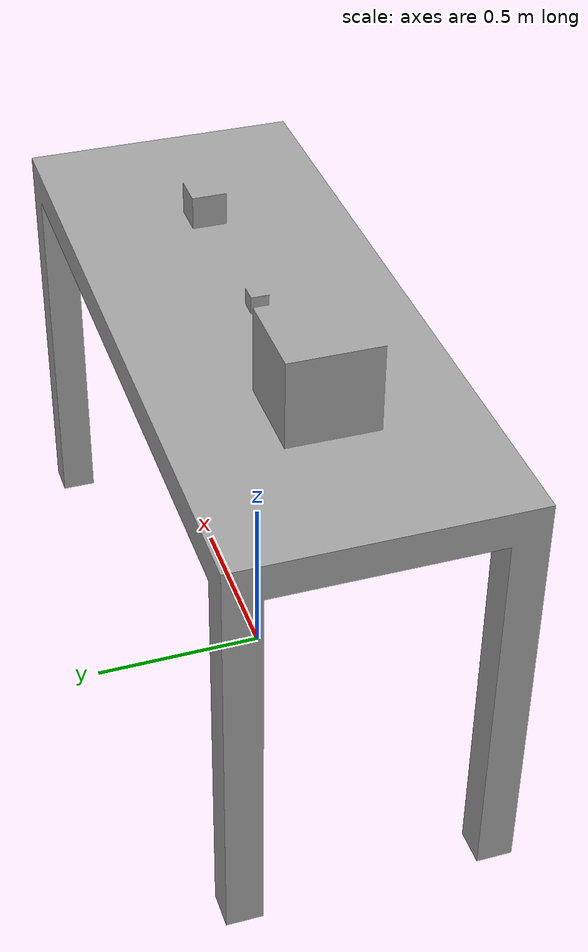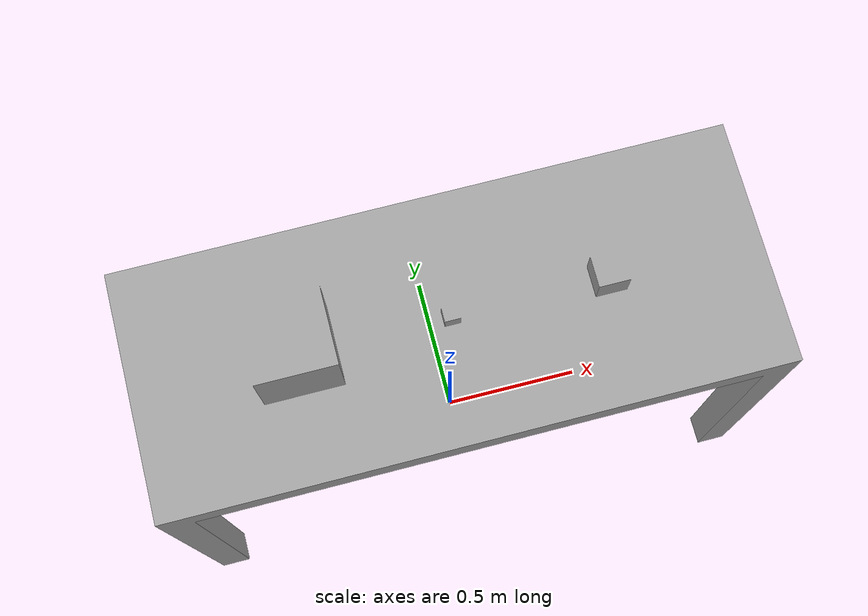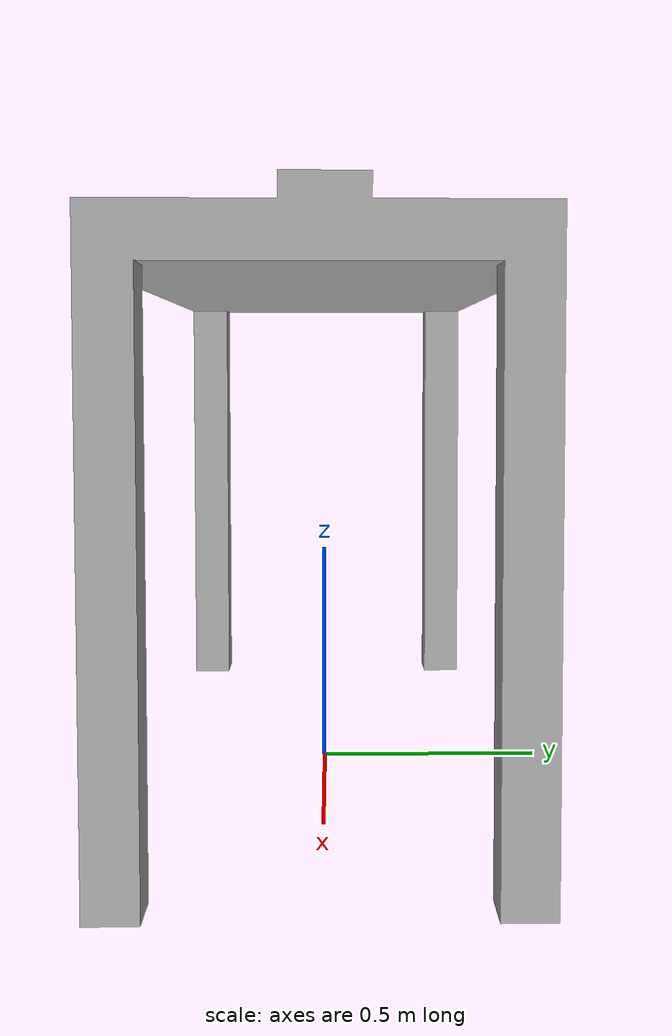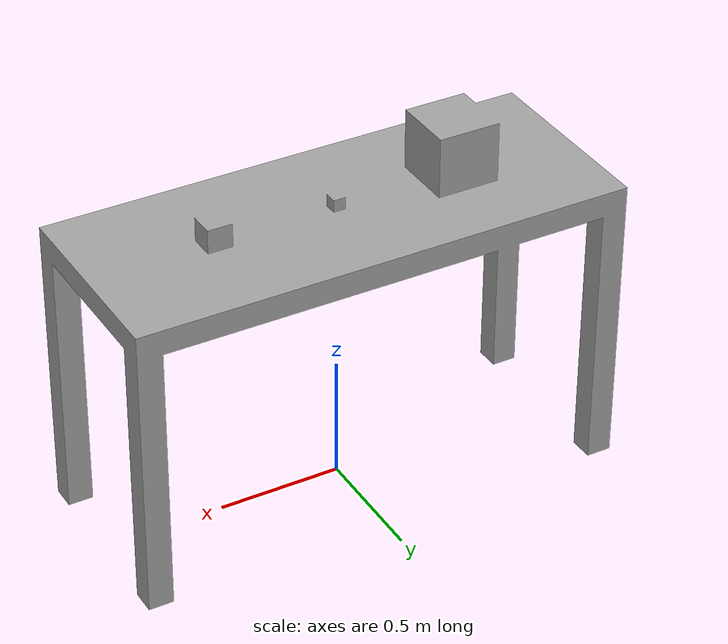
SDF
<?xml version="1.0"?>
<sdf version="1.5">
  <model name="my_table">
    <static>true</static>
    <link name="table_link">
      <collision name="table_collision">
        <geometry>
          <box>
            <size>1.5 1.5 1.5</size>
          </box>
        </geometry>
      </collision>

      <visual name="table_mesh">
        <cast_shadows>true</cast_shadows>
        <geometry>
          <mesh>
            <uri>model://mesa/meshes/mesa.dae</uri>
          </mesh>
        </geometry>
      </visual>
    </link>
  </model>
</sdf>
